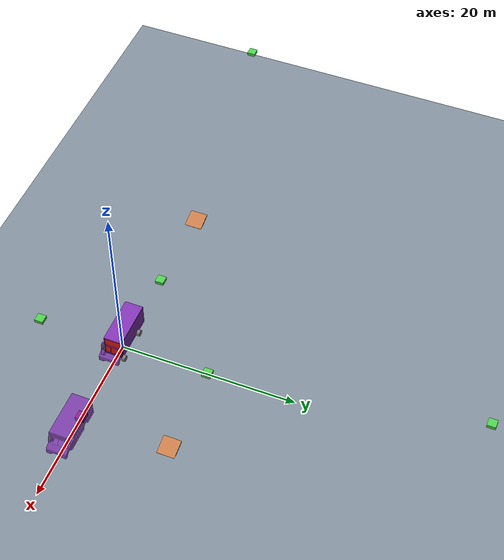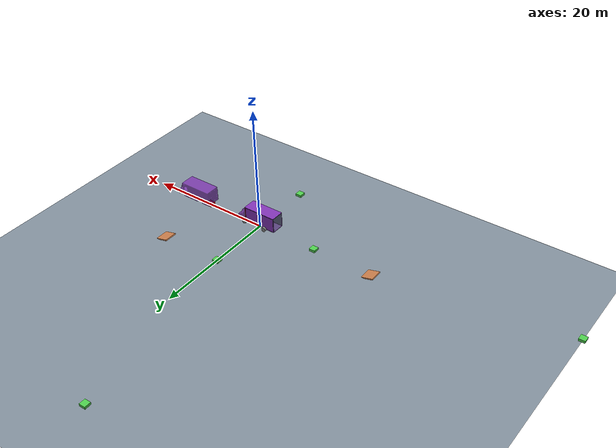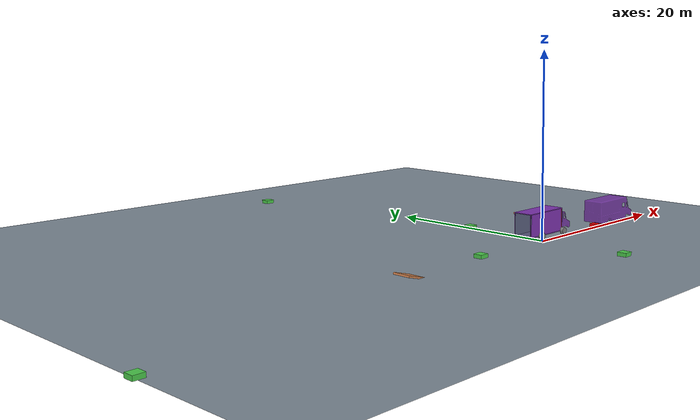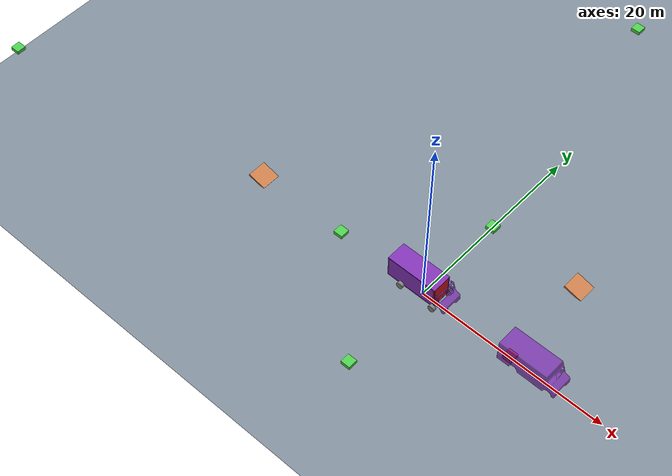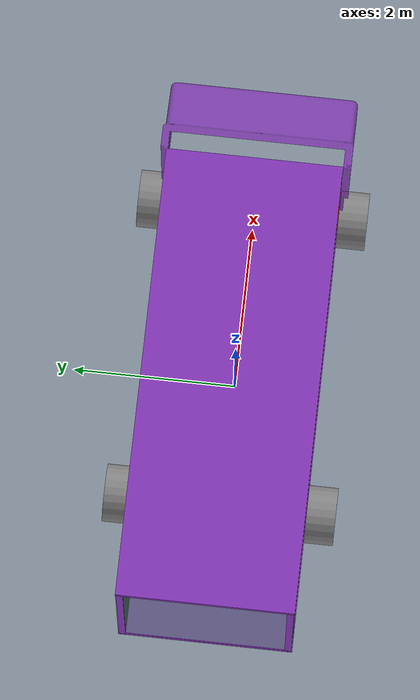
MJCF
<!--
목적 : (차량 모델 분리) 부분 트럭 모델
작성자 : 김준호
최초 작성일자 : 2025-05-10
수정자 : 김준호
최종 수정일자 : 2025-05-10
-->
<mujoco>
  <compiler inertiafromgeom="true"/>
  <option timestep="0.001" gravity="0 0 -9.81"/>

  <asset>
    <texture name="grid" type="2d" builtin="checker"
             rgb1="0.2 0.3 0.4" rgb2="0.8 0.8 0.8"
             width="512" height="512"/>
    <material name="grid_mat" texture="grid" texrepeat="5 5"
              specular="0.3" shininess="0.3"/>
    <texture name="wheel_pattern" type="2d" builtin="checker"
             rgb1="1 1 1" rgb2="0 0 0"
             width="64" height="64"/>
    <material name="wheel_mat" texture="wheel_pattern" texrepeat="8 1"
              specular="0.5" shininess="0.5"/>
    <mesh name="VAN_Front_mesh" file="VAN_Front.stl" scale="0.025 0.025 0.025" maxhullvert="100"/>
    <mesh name="truck_model_mesh" file="truck_model.stl" scale="0.025 0.025 0.025" maxhullvert="100"/>
  </asset>

  <worldbody>
    <light directional="true" diffuse=".8 .8 .8" specular="0.2 0.2 0.2" pos="0 0 4" dir="0 0 -1"/>

    <!-- 바닥: 충돌용 평면 -->
    <geom name="floor" type="plane" size="50 50 0.1"
          material="grid_mat"
          friction="1 0.5 0.5"
          contype="1" conaffinity="1" condim="3"/>

    <body name="sample" pos="5 0 0.5">
      <geom name="truck_model" type="mesh" mesh="truck_model_mesh" pos="7 0 0" euler="0 0 0" rgba="0.5 0.2 0.7 0.8" mass="10" friction="1 0.5 0.5"/>
    </body>

    <!-- 차량 본체 + 바퀴 정의 -->
    <body name="chassis" pos="0 0 1">
      <joint name="root" type="free"/>
      <geom name="chassis" type="box" size="2.7 1.05 0.04" pos="-0.7 0 0" rgba="0.5 0.2 0.7 1" mass="500" friction="1 0.5 0.5"/>
      <geom name="wall_Left" type="box" size="2.7 0.04 1.2" pos="-.7 1 1.2" rgba="0.5 0.2 0.7 0.9" mass="10" friction="1 0.5 0.5"/>
      <geom name="wall_Right" type="box" size="2.7 0.04 1.2" pos="-.7 -1 1.2" rgba="0.5 0.2 0.7 0.9" mass="10" friction="1 0.5 0.5"/>
      <geom name="wall_Back" type="box" size="0.04 1.05 1.2" pos="-3.35 0 1.2" rgba="0.1 0.9 0.1 0.3" mass="10" friction="1 0.5 0.5"/>
      <geom name="wall_Front" type="box" size="0.04 1.05 1.2" pos="1.9 0 1.2" rgba="0.9 0.1 0.1 0.9" mass="10" friction="1 0.5 0.5"/>
      <geom name="ceiling" type="box" size="2.7 1.05 0.04" pos="-0.7 0 2.4" rgba="0.5 0.2 0.7 1" mass="10" friction="1 0.5 0.5"/>
      <geom name="VAN_Front" type="mesh" mesh="VAN_Front_mesh" pos="2.6 0 0.2" euler="0 0 -90" rgba="0.5 0.2 0.7 0.8" mass="100" friction="1 0.5 0.5"/>

      <!-- 앞왼쪽 바퀴 -->
      <body name="front_left_wheel" pos="2 1.225 0">
        <joint name="fl_steer" type="hinge" axis="0 0 1"
               range="-0.6 0.6" damping="0" stiffness="0"/>
        <joint name="fl_wheel" type="hinge" axis="0 1 0" damping="0"/>
        <geom name="fl_geom" type="cylinder" size="0.35 0.175"
              euler="90 0 0" material="wheel_mat"
              mass="5.0" friction="0 0 0"
              solimp="0.9 0.95 0.001 0.1 2"
              contype="1" conaffinity="1" condim="3"
              margin="0.001" gap="0.0001"/>
        <site name="fl_site" pos="0 0 -0.7" size="0.01" group="3"/>
      </body>

      <!-- 앞오른쪽 바퀴 -->
      <body name="front_right_wheel" pos="2 -1.225 0">
        <joint name="fr_steer" type="hinge" axis="0 0 1"
               range="-0.6 0.6" damping="0" stiffness="0"/>
        <joint name="fr_wheel" type="hinge" axis="0 1 0" damping="0"/>
        <geom name="fr_geom" type="cylinder" size="0.35 0.175"
              euler="90 0 0" material="wheel_mat"
              mass="5.0" friction="0 0 0"
              solimp="0.9 0.95 0.001 0.1 2"
              contype="1" conaffinity="1" condim="3"
              margin="0.001" gap="0.0001"/>
        <site name="fr_site" pos="0 0 -0.7" size="0.01" group="3"/>
      </body>

      <!-- 뒤왼쪽 바퀴 -->
      <body name="rear_left_wheel" pos="-1.7 1.225 0">
        <joint name="rl_wheel" type="hinge" axis="0 1 0" damping="0"/>
        <geom name="rl_geom" type="cylinder" size="0.35 0.175"
              euler="90 0 0" material="wheel_mat"
              mass="5.0" friction="0 0 0"
              solimp="0.9 0.95 0.001 0.1 2"
              contype="1" conaffinity="1" condim="3"
              margin="0.001" gap="0.0001"/>
        <site name="rl_site" pos="0 0 -0.7" size="0.01" group="3"/>
      </body>

      <!-- 뒤오른쪽 바퀴 -->
      <body name="rear_right_wheel" pos="-1.7 -1.225 0">
        <joint name="rr_wheel" type="hinge" axis="0 1 0" damping="0"/>
        <geom name="rr_geom" type="cylinder" size="0.35 0.175"
              euler="90 0 0" material="wheel_mat"
              mass="5.0" friction="0 0 0"
              solimp="0.9 0.95 0.001 0.1 2"
              contype="1" conaffinity="1" condim="3"
              margin="0.001" gap="0.0001"/>
        <site name="rr_site" pos="0 0 -0.7" size="0.01" group="3"/>
      </body>
    </body>

    <!-- 기존 점프대 및 장애물 -->
    <geom name="jump_ramp1" type="box" pos="-20 0 0.1"
          size="1 1 0.1" euler="0 15 0"
          rgba="0.8 0.5 0.3 1" friction="1 0.5 0.5"
          contype="1" conaffinity="1" condim="3"/>
    <geom name="jump_ramp2" type="box" pos="10 10 0.1"
          size="1 1 0.1" euler="0 15 0"
          rgba="0.8 0.5 0.3 1" friction="1 0.5 0.5"
          contype="1" conaffinity="1" condim="3"/>

    <geom name="obstacle1" type="box" pos="-50 -5 0.2"
          size="0.5 0.5 0.2" rgba="0.3 0.8 0.3 1" friction="1 0.5 0.5"
          contype="1" conaffinity="1" condim="3"/>
    <geom name="obstacle2" type="box" pos="-5 40 0.2"
          size="0.5 0.5 0.2" rgba="0.3 0.8 0.3 1" friction="1 0.5 0.5"
          contype="1" conaffinity="1" condim="3"/>
    <geom name="obstacle3" type="box" pos="10 0 0.2"
          size="0.5 0.5 0.2" rgba="1 0 0 1" friction="1 0.5 0.5"
          contype="1" conaffinity="1" condim="3"/>
    <geom name="obstacle4" type="box" pos="0 -10 0.2"
          size="0.5 0.5 0.2" rgba="0.3 0.8 0.3 1" friction="1 0.5 0.5"
          contype="1" conaffinity="1" condim="3"/>
    <geom name="obstacle5" type="box" pos="-10 0 0.2"
          size="0.5 0.5 0.2" rgba="0.3 0.8 0.3 1" friction="1 0.5 0.5"
          contype="1" conaffinity="1" condim="3"/>
    <geom name="obstacle6" type="box" pos="0 10 0.2"
          size="0.5 0.5 0.2" rgba="0.3 0.8 0.3 1" friction="1 0.5 0.5"
          contype="1" conaffinity="1" condim="3"/>

    <!-- 수화물 공 9개 -->
    <body name="sphere_1" pos="-1 -.5 1.5">
      <joint name="sphere_rot_1" type="free"/>
      <geom size="0.1 0.1 0.1" type="sphere" rgba="0.1 0.9 0.2 1" mass="0.5" contype="1" conaffinity="1" friction="0.04 0.04 0.04"/>
    </body>
    <body name="sphere_2" pos="0 -.5 1.5">
      <joint name="sphere_rot_2" type="free"/>
      <geom size="0.1 0.1 0.1" type="sphere" rgba="0.1 0.9 0.2 1" mass="0.5" contype="1" conaffinity="1" friction="0.04 0.04 0.04"/>
    </body>
    <body name="sphere_3" pos="1 -.5 1.5">
      <joint name="sphere_rot_3" type="free"/>
      <geom size="0.1 0.1 0.1" type="sphere" rgba="0.1 0.9 0.2 1" mass="0.5" contype="1" conaffinity="1" friction="0.04 0.04 0.04"/>
    </body>
    <body name="sphere_4" pos="-1 0 1.5">
      <joint name="sphere_rot_4" type="free"/>
      <geom size="0.1 0.1 0.1" type="sphere" rgba="0.1 0.9 0.2 1" mass="0.5" contype="1" conaffinity="1" friction="0.04 0.04 0.04"/>
    </body>
    <body name="sphere_5" pos="0 0 1.5">
      <joint name="sphere_rot_5" type="free"/>
      <geom size="0.1 0.1 0.1" type="sphere" rgba="0.1 0.9 0.2 1" mass="0.5" contype="1" conaffinity="1" friction="0.04 0.04 0.04"/>
    </body>
    <body name="sphere_6" pos="1 0 1.5">
      <joint name="sphere_rot_6" type="free"/>
      <geom size="0.1 0.1 0.1" type="sphere" rgba="0.1 0.9 0.2 1" mass="0.5" contype="1" conaffinity="1" friction="0.04 0.04 0.04"/>
    </body>
    <body name="sphere_7" pos="-1 .5 1.5">
      <joint name="sphere_rot_7" type="free"/>
      <geom size="0.1 0.1 0.1" type="sphere" rgba="0.1 0.9 0.2 1" mass="0.5" contype="1" conaffinity="1" friction="0.04 0.04 0.04"/>
    </body>
    <body name="sphere_8" pos="0 .5 1.5">
      <joint name="sphere_rot_8" type="free"/>
      <geom size="0.1 0.1 0.1" type="sphere" rgba="0.1 0.9 0.2 1" mass="0.5" contype="1" conaffinity="1" friction="0.04 0.04 0.04"/>
    </body>
    <body name="sphere_9" pos="1 .5 1.5">
      <joint name="sphere_rot_9" type="free"/>
      <geom size="0.1 0.1 0.1" type="sphere" rgba="0.1 0.9 0.2 1" mass="0.5" contype="1" conaffinity="1" friction="0.04 0.04 0.04"/>
    </body>
  </worldbody>

  <!-- 액츄에이터 (바퀴 동력 및 조향) -->
  <actuator>
    <motor name="fl_motor" joint="fl_wheel"      ctrlrange="-2000 2000" gear="1"/>
    <motor name="fr_motor" joint="fr_wheel"      ctrlrange="-2000 2000" gear="1"/>
    <motor name="rl_motor" joint="rl_wheel"      ctrlrange="-2000 2000" gear="1"/>
    <motor name="rr_motor" joint="rr_wheel"      ctrlrange="-2000 2000" gear="1"/>
    <motor name="fl_steer_motor" joint="fl_steer" ctrlrange="-200 200"   gear="10"/>
    <motor name="fr_steer_motor" joint="fr_steer" ctrlrange="-200 200"   gear="10"/>
  </actuator>

  <!-- 힘 측정 센서-->
  <sensor>
    <force name="fl_force" site="fl_site"/>
    <force name="fr_force" site="fr_site"/>
    <force name="rl_force" site="rl_site"/>
    <force name="rr_force" site="rr_site"/>
  </sensor>
</mujoco>
